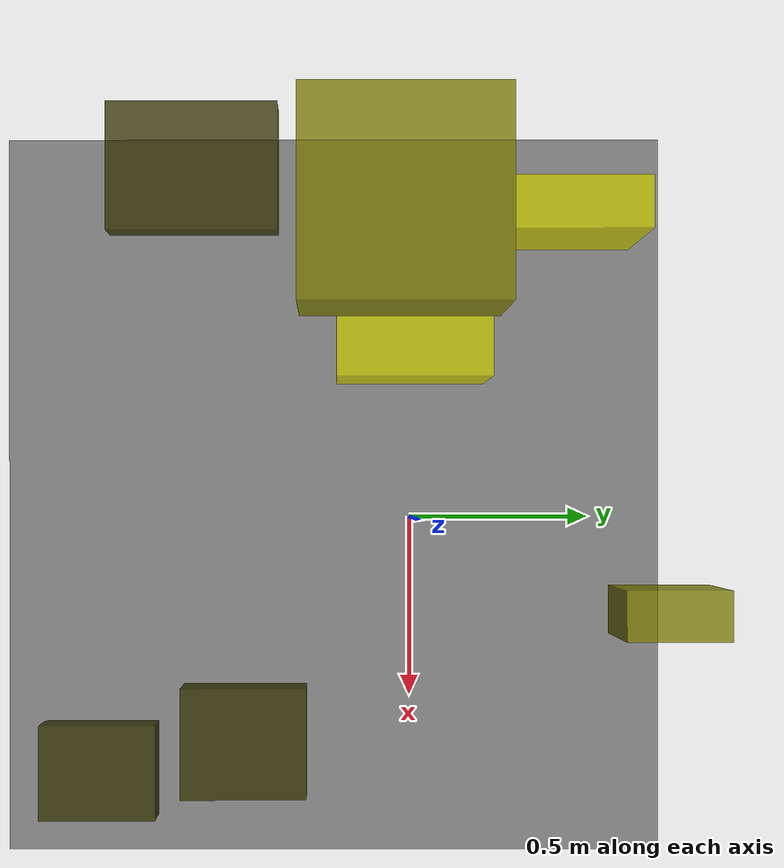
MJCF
<?xml version="1.0"?>
<mujoco model="obstacle_scene">
  <compiler angle="radian" coordinate="local"/>
  <option timestep="0.001" gravity="0 0 -9.81"/>

  <asset>
    <material name="obstacle_mat" rgba="0.8 0.8 0.0 0.8"/>
    <material name="ground_mat" rgba="0.5 0.5 0.5 1"/>
  </asset>

  <worldbody>
    <!-- Ground plane -->
    <geom name="ground" type="plane" size="3 3 0.1" material="ground_mat"/>

    <!-- Obstacles -->
    <body name="obstacle_0" pos="-0.807910 -0.533552 0.659994">
      <geom name="obs_0" type="box" size="0.144988 0.195148 0.035084" rgba="0.2 0.2 0.0 0.8"/>
    </body>
    <body name="obstacle_1" pos="-0.626212 -0.076456 1.106598">
      <geom name="obs_1" type="box" size="0.203656 0.203756 0.105942" rgba="0.5 0.5 0.0 0.8"/>
    </body>
    <body name="obstacle_2" pos="-0.762951 0.370768 0.402050">
      <geom name="obs_2" type="box" size="0.063354 0.186106 0.134692" rgba="0.8 0.8 0.0 0.8"/>
    </body>
    <body name="obstacle_3" pos="0.569158 -0.440634 0.318533">
      <geom name="obs_3" type="box" size="0.139554 0.159650 0.053863" rgba="0.2 0.2 0.0 0.8"/>
    </body>
    <body name="obstacle_4" pos="0.183966 0.486530 0.924219">
      <geom name="obs_4" type="box" size="0.051995 0.106905 0.089738" rgba="0.5 0.5 0.0 0.8"/>
    </body>
    <body name="obstacle_5" pos="-0.433092 -0.019991 0.495341">
      <geom name="obs_5" type="box" size="0.093864 0.183200 0.106219" rgba="0.8 0.8 0.0 0.8"/>
    </body>
    <body name="obstacle_6" pos="0.698661 -0.858220 0.075093">
      <geom name="obs_6" type="box" size="0.129767 0.158749 0.043459" rgba="0.2 0.2 0.0 0.8"/>
    </body>
  </worldbody>
</mujoco>
